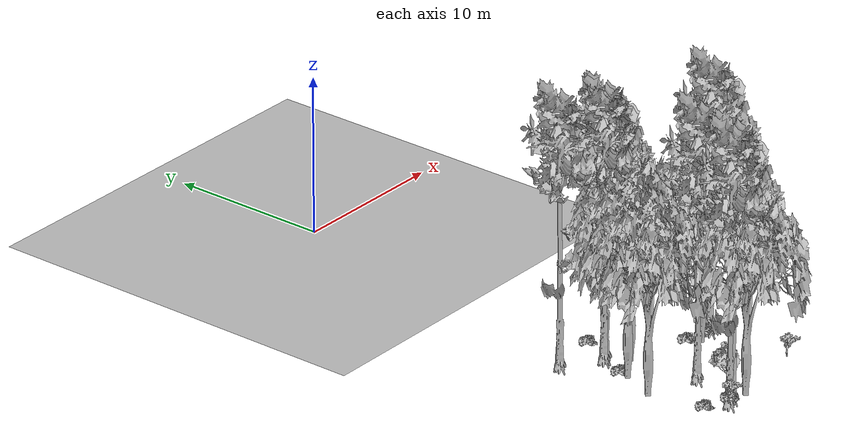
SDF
<sdf version="1.7">
 <world name="default">
  <model name="ground_plane">
   <static>1</static>
   <link name="link">
    <collision name="collision">
     <pose>-50 0 0 0 -0 0</pose>
     <geometry><plane><normal>0 0 1</normal><size>80 80</size></plane></geometry>
     <surface><contact><ode><min_depth>0.01</min_depth><max_vel>0</max_vel></ode></contact></surface>
    </collision>
    <visual name="grass">
     <cast_shadows>0</cast_shadows>
     <geometry>
      <mesh>
       <scale>0.46714285714285714 0.46714285714285714 0.1</scale>
       <uri>file://grass_plane/meshes/grass_plane.dae</uri>
      </mesh>
     </geometry>
    </visual>
   </link>
  </model>
  <model name="Tree 4">
   <static>1</static>
   <pose>5.168630437713745 -24.923502300719626 0 1.57079 -0 0</pose>
   <link name="link">
    <collision name="collision">
     <geometry><mesh><scale>3.5 5 3.5</scale><uri>model://tree_9/meshes/tree_9.obj</uri></mesh></geometry>
    </collision>
    <visual name="visual">
     <geometry><mesh><scale>3.5 5 3.5</scale><uri>model://tree_9/meshes/tree_9.obj</uri></mesh></geometry>
    </visual>
   </link>
  </model>
  <model name="Tree 58">
   <static>1</static>
   <pose>-0.46439801117249147 -30.698466888137325 0 1.57079 -0 0</pose>
   <link name="link">
    <collision name="collision">
     <geometry><mesh><scale>3.5 5 3.5</scale><uri>model://tree_9/meshes/tree_9.obj</uri></mesh></geometry>
    </collision>
    <visual name="visual">
     <geometry><mesh><scale>3.5 5 3.5</scale><uri>model://tree_9/meshes/tree_9.obj</uri></mesh></geometry>
    </visual>
   </link>
  </model>
  <model name="Tree 86">
   <static>1</static>
   <pose>-1.1644861311349928 -30.998353683607824 0 1.57079 -0 0</pose>
   <link name="link">
    <collision name="collision">
     <geometry><mesh><scale>3.5 5 3.5</scale><uri>model://tree_9/meshes/tree_9.obj</uri></mesh></geometry>
    </collision>
    <visual name="visual">
     <geometry><mesh><scale>3.5 5 3.5</scale><uri>model://tree_9/meshes/tree_9.obj</uri></mesh></geometry>
    </visual>
   </link>
  </model>
  <model name="Tree 176">
   <static>1</static>
   <pose>-1.135085777807916 -23.984784963509345 0 1.57079 -0 0</pose>
   <link name="link">
    <collision name="collision">
     <geometry><mesh><scale>3.5 5 3.5</scale><uri>model://tree_2/meshes/tree_2.obj</uri></mesh></geometry>
    </collision>
    <visual name="visual">
     <geometry><mesh><scale>3.5 5 3.5</scale><uri>model://tree_2/meshes/tree_2.obj</uri></mesh></geometry>
    </visual>
   </link>
  </model>
  <model name="Tree 177">
   <static>1</static>
   <pose>-1.0891696791637742 -22.23003648112094 0 1.57079 -0 0</pose>
   <link name="link">
    <collision name="collision">
     <geometry><mesh><scale>3.5 5 3.5</scale><uri>model://tree_9/meshes/tree_9.obj</uri></mesh></geometry>
    </collision>
    <visual name="visual">
     <geometry><mesh><scale>3.5 5 3.5</scale><uri>model://tree_9/meshes/tree_9.obj</uri></mesh></geometry>
    </visual>
   </link>
  </model>
  <model name="Tree 215">
   <static>1</static>
   <pose>-2.8344901882147084 -25.096870981476165 0 1.57079 -0 0</pose>
   <link name="link">
    <collision name="collision">
     <geometry><mesh><scale>3.5 5 3.5</scale><uri>model://tree_2/meshes/tree_2.obj</uri></mesh></geometry>
    </collision>
    <visual name="visual">
     <geometry><mesh><scale>3.5 5 3.5</scale><uri>model://tree_2/meshes/tree_2.obj</uri></mesh></geometry>
    </visual>
   </link>
  </model>
  <model name="Tree 292">
   <static>1</static>
   <pose>0.09075425617825772 -27.81780188098674 0 1.57079 -0 0</pose>
   <link name="link">
    <collision name="collision">
     <geometry><mesh><scale>3.5 5 3.5</scale><uri>model://tree_9/meshes/tree_9.obj</uri></mesh></geometry>
    </collision>
    <visual name="visual">
     <geometry><mesh><scale>3.5 5 3.5</scale><uri>model://tree_9/meshes/tree_9.obj</uri></mesh></geometry>
    </visual>
   </link>
  </model>
  <model name="Tree 377">
   <static>1</static>
   <pose>-3.798505976130407 -27.251246557303837 0 1.57079 -0 0</pose>
   <link name="link">
    <collision name="collision">
     <geometry><mesh><scale>3.5 5 3.5</scale><uri>model://tree_2/meshes/tree_2.obj</uri></mesh></geometry>
    </collision>
    <visual name="visual">
     <geometry><mesh><scale>3.5 5 3.5</scale><uri>model://tree_2/meshes/tree_2.obj</uri></mesh></geometry>
    </visual>
   </link>
  </model>
  <model name="Tree 438">
   <static>1</static>
   <pose>-3.5900140860956 -20.911538718113523 0 1.57079 -0 0</pose>
   <link name="link">
    <collision name="collision">
     <geometry><mesh><scale>3.5 5 3.5</scale><uri>model://tree_9/meshes/tree_9.obj</uri></mesh></geometry>
    </collision>
    <visual name="visual">
     <geometry><mesh><scale>3.5 5 3.5</scale><uri>model://tree_9/meshes/tree_9.obj</uri></mesh></geometry>
    </visual>
   </link>
  </model>
  <model name="Tree 472">
   <static>1</static>
   <pose>-1.4030204072244175 -22.363135594164085 0 1.57079 -0 0</pose>
   <link name="link">
    <collision name="collision">
     <geometry><mesh><scale>3.5 5 3.5</scale><uri>model://tree_9/meshes/tree_9.obj</uri></mesh></geometry>
    </collision>
    <visual name="visual">
     <geometry><mesh><scale>3.5 5 3.5</scale><uri>model://tree_9/meshes/tree_9.obj</uri></mesh></geometry>
    </visual>
   </link>
  </model>
  <model name="Tree 566">
   <static>1</static>
   <pose>3.1956951290438766 -25.724149297358395 0 1.57079 -0 0</pose>
   <link name="link">
    <collision name="collision">
     <geometry><mesh><scale>3.5 5 3.5</scale><uri>model://tree_2/meshes/tree_2.obj</uri></mesh></geometry>
    </collision>
    <visual name="visual">
     <geometry><mesh><scale>3.5 5 3.5</scale><uri>model://tree_2/meshes/tree_2.obj</uri></mesh></geometry>
    </visual>
   </link>
  </model>
  <model name="Tree 620">
   <static>1</static>
   <pose>-0.3152392836486584 -31.448316951150854 0 1.57079 -0 0</pose>
   <link name="link">
    <collision name="collision">
     <geometry><mesh><scale>3.5 5 3.5</scale><uri>model://tree_2/meshes/tree_2.obj</uri></mesh></geometry>
    </collision>
    <visual name="visual">
     <geometry><mesh><scale>3.5 5 3.5</scale><uri>model://tree_2/meshes/tree_2.obj</uri></mesh></geometry>
    </visual>
   </link>
  </model>
  <model name="Bush 7">
   <static>1</static>
   <pose>-0.9369406918030379 -20.83745775064169 0 1.57079 -0 0</pose>
   <link name="link">
    <collision name="collision">
     <geometry><mesh><scale>2 2 2</scale><uri>model://bush_2/meshes/bush_2.obj</uri></mesh></geometry>
     <surface><contact><collide_without_contact>false</collide_without_contact></contact></surface>
    </collision>
    <visual name="visual">
     <geometry><mesh><scale>2 2 2</scale><uri>model://bush_2/meshes/bush_2.obj</uri></mesh></geometry>
    </visual>
   </link>
  </model>
  <model name="Bush 186">
   <static>1</static>
   <pose>2.8149334483733384 -25.01131288269861 0 1.57079 -0 0</pose>
   <link name="link">
    <collision name="collision">
     <geometry><mesh><scale>2 2 2</scale><uri>model://bush_2/meshes/bush_2.obj</uri></mesh></geometry>
     <surface><contact><collide_without_contact>false</collide_without_contact></contact></surface>
    </collision>
    <visual name="visual">
     <geometry><mesh><scale>2 2 2</scale><uri>model://bush_2/meshes/bush_2.obj</uri></mesh></geometry>
    </visual>
   </link>
  </model>
  <model name="Bush 202">
   <static>1</static>
   <pose>-2.9488084583743372 -30.578996696049508 0 1.57079 -0 0</pose>
   <link name="link">
    <collision name="collision">
     <geometry><mesh><scale>2 2 2</scale><uri>model://bush_2/meshes/bush_2.obj</uri></mesh></geometry>
     <surface><contact><collide_without_contact>false</collide_without_contact></contact></surface>
    </collision>
    <visual name="visual">
     <geometry><mesh><scale>2 2 2</scale><uri>model://bush_2/meshes/bush_2.obj</uri></mesh></geometry>
    </visual>
   </link>
  </model>
  <model name="Bush 205">
   <static>1</static>
   <pose>-1.2133796424634937 -31.023283551109905 0 1.57079 -0 0</pose>
   <link name="link">
    <collision name="collision">
     <geometry><mesh><scale>2 2 2</scale><uri>model://bush_2/meshes/bush_2.obj</uri></mesh></geometry>
     <surface><contact><collide_without_contact>false</collide_without_contact></contact></surface>
    </collision>
    <visual name="visual">
     <geometry><mesh><scale>2 2 2</scale><uri>model://bush_2/meshes/bush_2.obj</uri></mesh></geometry>
    </visual>
   </link>
  </model>
  <model name="Bush 212">
   <static>1</static>
   <pose>4.27272884510203 -25.187308727079902 0 1.57079 -0 0</pose>
   <link name="link">
    <collision name="collision">
     <geometry><mesh><scale>2 2 2</scale><uri>model://bush_2/meshes/bush_2.obj</uri></mesh></geometry>
     <surface><contact><collide_without_contact>false</collide_without_contact></contact></surface>
    </collision>
    <visual name="visual">
     <geometry><mesh><scale>2 2 2</scale><uri>model://bush_2/meshes/bush_2.obj</uri></mesh></geometry>
    </visual>
   </link>
  </model>
  <model name="Bush 217">
   <static>1</static>
   <pose>-2.6239971308850443 -24.415770637247576 0 1.57079 -0 0</pose>
   <link name="link">
    <collision name="collision">
     <geometry><mesh><scale>2 2 2</scale><uri>model://bush_2/meshes/bush_2.obj</uri></mesh></geometry>
     <surface><contact><collide_without_contact>false</collide_without_contact></contact></surface>
    </collision>
    <visual name="visual">
     <geometry><mesh><scale>2 2 2</scale><uri>model://bush_2/meshes/bush_2.obj</uri></mesh></geometry>
    </visual>
   </link>
  </model>
  <model name="Bush 241">
   <static>1</static>
   <pose>4.8628265327006375 -30.564833504509473 0 1.57079 -0 0</pose>
   <link name="link">
    <collision name="collision">
     <geometry><mesh><scale>2 2 2</scale><uri>model://bush_5/meshes/bush_5.obj</uri></mesh></geometry>
     <surface><contact><collide_without_contact>false</collide_without_contact></contact></surface>
    </collision>
    <visual name="visual">
     <geometry><mesh><scale>2 2 2</scale><uri>model://bush_5/meshes/bush_5.obj</uri></mesh></geometry>
    </visual>
   </link>
  </model>
  <model name="Bush 467">
   <static>1</static>
   <pose>3.5874517413006544 -25.417931379101457 0 1.57079 -0 0</pose>
   <link name="link">
    <collision name="collision">
     <geometry><mesh><scale>2 2 2</scale><uri>model://bush_5/meshes/bush_5.obj</uri></mesh></geometry>
     <surface><contact><collide_without_contact>false</collide_without_contact></contact></surface>
    </collision>
    <visual name="visual">
     <geometry><mesh><scale>2 2 2</scale><uri>model://bush_5/meshes/bush_5.obj</uri></mesh></geometry>
    </visual>
   </link>
  </model>
  <model name="Bush 487">
   <static>1</static>
   <pose>4.931098727631003 -24.839571604147785 0 1.57079 -0 0</pose>
   <link name="link">
    <collision name="collision">
     <geometry><mesh><scale>2 2 2</scale><uri>model://bush_2/meshes/bush_2.obj</uri></mesh></geometry>
     <surface><contact><collide_without_contact>false</collide_without_contact></contact></surface>
    </collision>
    <visual name="visual">
     <geometry><mesh><scale>2 2 2</scale><uri>model://bush_2/meshes/bush_2.obj</uri></mesh></geometry>
    </visual>
   </link>
  </model>
  <model name="Bush 565">
   <static>1</static>
   <pose>-1.6134257071882132 -31.314277178891594 0 1.57079 -0 0</pose>
   <link name="link">
    <collision name="collision">
     <geometry><mesh><scale>2 2 2</scale><uri>model://bush_5/meshes/bush_5.obj</uri></mesh></geometry>
     <surface><contact><collide_without_contact>false</collide_without_contact></contact></surface>
    </collision>
    <visual name="visual">
     <geometry><mesh><scale>2 2 2</scale><uri>model://bush_5/meshes/bush_5.obj</uri></mesh></geometry>
    </visual>
   </link>
  </model>
  <model name="Bush 568">
   <static>1</static>
   <pose>1.0187609863775577 -29.23939030796489 0 1.57079 -0 0</pose>
   <link name="link">
    <collision name="collision">
     <geometry><mesh><scale>2 2 2</scale><uri>model://bush_1/meshes/bush_1.obj</uri></mesh></geometry>
     <surface><contact><collide_without_contact>false</collide_without_contact></contact></surface>
    </collision>
    <visual name="visual">
     <geometry><mesh><scale>2 2 2</scale><uri>model://bush_1/meshes/bush_1.obj</uri></mesh></geometry>
    </visual>
   </link>
  </model>
 </world>
</sdf>
